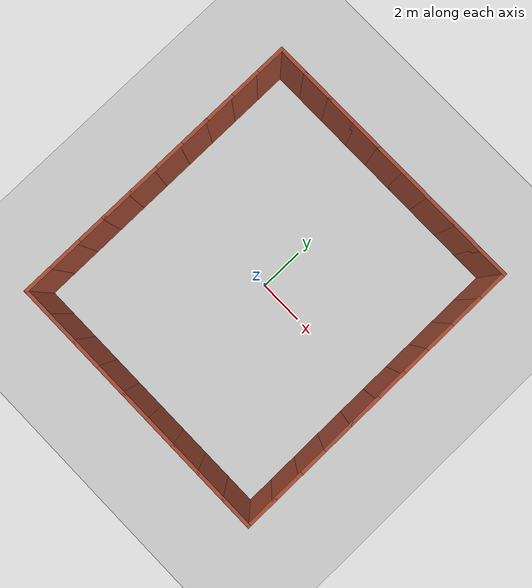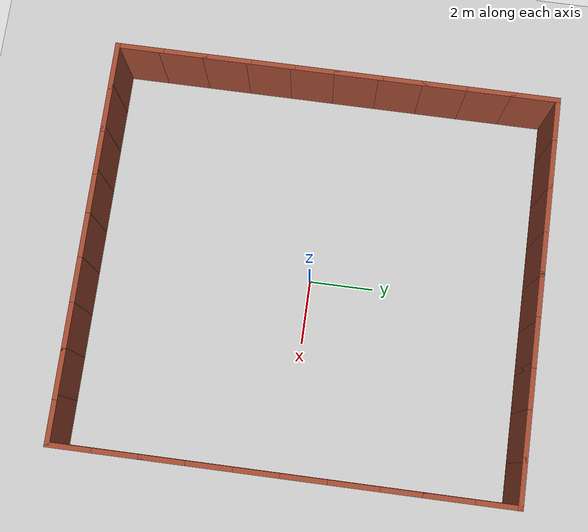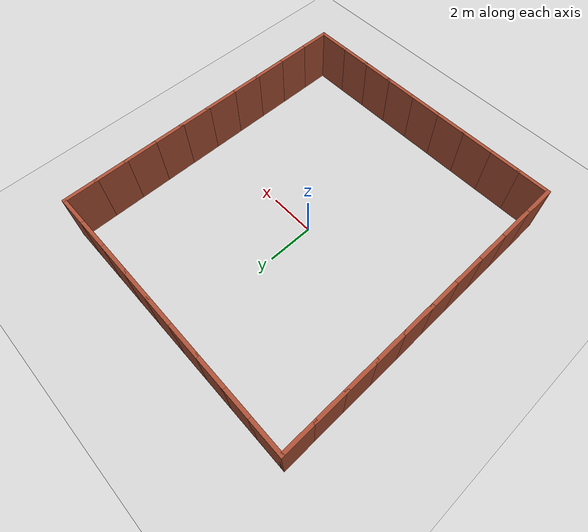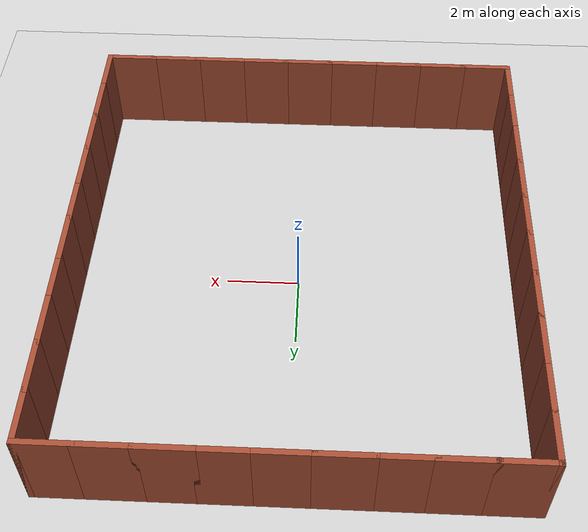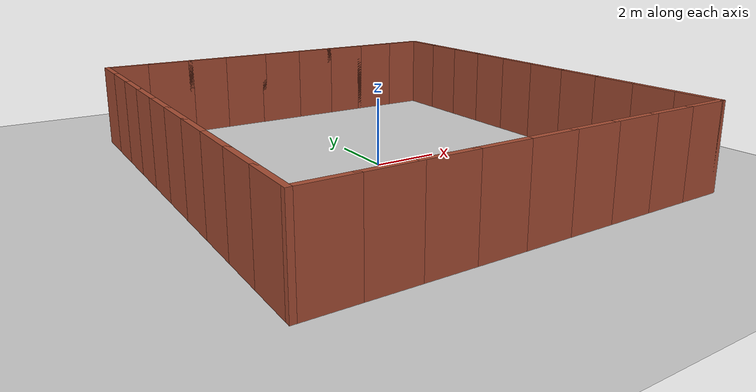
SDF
<sdf version="1.7">
 <world name="default">
  <light name="sun" type="directional">
   <pose>0 0 10 0 -0 0</pose>
   <diffuse>0.8 0.8 0.8 1</diffuse>
   <specular>0.2 0.2 0.2 1</specular>
   <attenuation>
    <range>1000</range>
    <constant>0.9</constant>
    <linear>0.01</linear>
    <quadratic>0.001</quadratic>
   </attenuation>
   <direction>-0.5 0.1 -0.9</direction>
   <spot><inner_angle>0</inner_angle><outer_angle>0</outer_angle><falloff>0</falloff></spot>
  </light>
  <model name="ground_plane">
   <static>1</static>
   <link name="link">
    <collision name="collision">
     <geometry><plane><normal>0 0 1</normal><size>100 100</size></plane></geometry>
     <surface>
      <contact><collide_bitmask>65535</collide_bitmask></contact>
      <friction><ode><mu>100</mu><mu2>50</mu2></ode></friction>
     </surface>
    </collision>
    <visual name="visual">
     <cast_shadows>0</cast_shadows>
     <geometry><plane><normal>0 0 1</normal><size>100 100</size></plane></geometry>
     <material>
      <script><uri>file://media/materials/scripts/gazebo.material</uri><name>Gazebo/Grey</name></script>
     </material>
    </visual>
   </link>
  </model>
  <gravity>0 0 -9.8</gravity>
  <magnetic_field>6e-06 2.3e-05 -4.2e-05</magnetic_field>
  <atmosphere type="adiabatic"/>
  <physics type="ode">
   <max_step_size>0.001</max_step_size>
   <real_time_factor>1</real_time_factor>
   <real_time_update_rate>1000</real_time_update_rate>
  </physics>
  <scene><ambient>0.4 0.4 0.4 1</ambient><background>0.7 0.7 0.7 1</background><shadows>1</shadows></scene>
  <audio><device>default</device></audio>
  <spherical_coordinates>
   <surface_model>EARTH_WGS84</surface_model>
   <latitude_deg>0</latitude_deg>
   <longitude_deg>0</longitude_deg>
   <elevation>0</elevation>
   <heading_deg>0</heading_deg>
  </spherical_coordinates>
  <model name="TestRoom">
   <pose>0.012629 0.027248 0 0 -0 0</pose>
   <link name="Wall_12">
    <collision name="Wall_12_Collision">
     <geometry><box><size>1.5 0.15 2.5</size></box></geometry>
     <pose>0 0 1.25 0 -0 0</pose>
    </collision>
    <visual name="Wall_12_Visual">
     <pose>0 0 1.25 0 -0 0</pose>
     <geometry><box><size>1.5 0.15 2.5</size></box></geometry>
     <material>
      <script><uri>file://media/materials/scripts/gazebo.material</uri><name>Gazebo/Bricks</name></script>
      <ambient>1 1 1 1</ambient>
     </material>
     <meta><layer>0</layer></meta>
    </visual>
    <pose>-4.05 6.75 0 0 -0 0</pose>
   </link>
   <link name="Wall_13">
    <collision name="Wall_13_Collision">
     <geometry><box><size>1.5 0.15 2.5</size></box></geometry>
     <pose>0 0 1.25 0 -0 0</pose>
    </collision>
    <visual name="Wall_13_Visual">
     <pose>0 0 1.25 0 -0 0</pose>
     <geometry><box><size>1.5 0.15 2.5</size></box></geometry>
     <material>
      <script><uri>file://media/materials/scripts/gazebo.material</uri><name>Gazebo/Bricks</name></script>
      <ambient>1 1 1 1</ambient>
     </material>
     <meta><layer>0</layer></meta>
    </visual>
    <pose>-2.7 6.75 0 0 -0 0</pose>
   </link>
   <link name="Wall_14">
    <collision name="Wall_14_Collision">
     <geometry><box><size>1.5 0.15 2.5</size></box></geometry>
     <pose>0 0 1.25 0 -0 0</pose>
    </collision>
    <visual name="Wall_14_Visual">
     <pose>0 0 1.25 0 -0 0</pose>
     <geometry><box><size>1.5 0.15 2.5</size></box></geometry>
     <material>
      <script><uri>file://media/materials/scripts/gazebo.material</uri><name>Gazebo/Bricks</name></script>
      <ambient>1 1 1 1</ambient>
     </material>
     <meta><layer>0</layer></meta>
    </visual>
    <pose>-1.35 6.75 0 0 -0 0</pose>
   </link>
   <link name="Wall_15">
    <collision name="Wall_15_Collision">
     <geometry><box><size>1.5 0.15 2.5</size></box></geometry>
     <pose>0 0 1.25 0 -0 0</pose>
    </collision>
    <visual name="Wall_15_Visual">
     <pose>0 0 1.25 0 -0 0</pose>
     <geometry><box><size>1.5 0.15 2.5</size></box></geometry>
     <material>
      <script><uri>file://media/materials/scripts/gazebo.material</uri><name>Gazebo/Bricks</name></script>
      <ambient>1 1 1 1</ambient>
     </material>
     <meta><layer>0</layer></meta>
    </visual>
    <pose>0 6.75 0 0 -0 0</pose>
   </link>
   <link name="Wall_16">
    <collision name="Wall_16_Collision">
     <geometry><box><size>1.5 0.15 2.5</size></box></geometry>
     <pose>0 0 1.25 0 -0 0</pose>
    </collision>
    <visual name="Wall_16_Visual">
     <pose>0 0 1.25 0 -0 0</pose>
     <geometry><box><size>1.5 0.15 2.5</size></box></geometry>
     <material>
      <script><uri>file://media/materials/scripts/gazebo.material</uri><name>Gazebo/Bricks</name></script>
      <ambient>1 1 1 1</ambient>
     </material>
     <meta><layer>0</layer></meta>
    </visual>
    <pose>1.35 6.75 0 0 -0 0</pose>
   </link>
   <link name="Wall_17">
    <collision name="Wall_17_Collision">
     <geometry><box><size>1.5 0.15 2.5</size></box></geometry>
     <pose>0 0 1.25 0 -0 0</pose>
    </collision>
    <visual name="Wall_17_Visual">
     <pose>0 0 1.25 0 -0 0</pose>
     <geometry><box><size>1.5 0.15 2.5</size></box></geometry>
     <material>
      <script><uri>file://media/materials/scripts/gazebo.material</uri><name>Gazebo/Bricks</name></script>
      <ambient>1 1 1 1</ambient>
     </material>
     <meta><layer>0</layer></meta>
    </visual>
    <pose>2.7 6.75 0 0 -0 0</pose>
   </link>
   <link name="Wall_19">
    <collision name="Wall_19_Collision">
     <geometry><box><size>1.5 0.15 2.5</size></box></geometry>
     <pose>0 0 1.25 0 -0 0</pose>
    </collision>
    <visual name="Wall_19_Visual">
     <pose>0 0 1.25 0 -0 0</pose>
     <geometry><box><size>1.5 0.15 2.5</size></box></geometry>
     <material>
      <script><uri>file://media/materials/scripts/gazebo.material</uri><name>Gazebo/Bricks</name></script>
      <ambient>1 1 1 1</ambient>
     </material>
     <meta><layer>0</layer></meta>
    </visual>
    <pose>4.05 6.75 0 0 -0 0</pose>
   </link>
   <link name="Wall_20">
    <collision name="Wall_20_Collision">
     <geometry><box><size>1.5 0.15 2.5</size></box></geometry>
     <pose>0 0 1.25 0 -0 0</pose>
    </collision>
    <visual name="Wall_20_Visual">
     <pose>0 0 1.25 0 -0 0</pose>
     <geometry><box><size>1.5 0.15 2.5</size></box></geometry>
     <material>
      <script><uri>file://media/materials/scripts/gazebo.material</uri><name>Gazebo/Bricks</name></script>
      <ambient>1 1 1 1</ambient>
     </material>
     <meta><layer>0</layer></meta>
    </visual>
    <pose>5.4 6.75 0 0 -0 0</pose>
   </link>
   <link name="Wall_21">
    <collision name="Wall_21_Collision">
     <geometry><box><size>1.5 0.15 2.5</size></box></geometry>
     <pose>0 0 1.25 0 -0 0</pose>
    </collision>
    <visual name="Wall_21_Visual">
     <pose>0 0 1.25 0 -0 0</pose>
     <geometry><box><size>1.5 0.15 2.5</size></box></geometry>
     <material>
      <script><uri>file://media/materials/scripts/gazebo.material</uri><name>Gazebo/Bricks</name></script>
      <ambient>1 1 1 1</ambient>
     </material>
     <meta><layer>0</layer></meta>
    </visual>
    <pose>6.075 6.075 0 0 -0 -1.5708</pose>
   </link>
   <link name="Wall_22">
    <collision name="Wall_22_Collision">
     <geometry><box><size>1.5 0.15 2.5</size></box></geometry>
     <pose>0 0 1.25 0 -0 0</pose>
    </collision>
    <visual name="Wall_22_Visual">
     <pose>0 0 1.25 0 -0 0</pose>
     <geometry><box><size>1.5 0.15 2.5</size></box></geometry>
     <material>
      <script><uri>file://media/materials/scripts/gazebo.material</uri><name>Gazebo/Bricks</name></script>
      <ambient>1 1 1 1</ambient>
     </material>
     <meta><layer>0</layer></meta>
    </visual>
    <pose>6.075 4.725 0 0 -0 -1.5708</pose>
   </link>
   <link name="Wall_23">
    <collision name="Wall_23_Collision">
     <geometry><box><size>1.5 0.15 2.5</size></box></geometry>
     <pose>0 0 1.25 0 -0 0</pose>
    </collision>
    <visual name="Wall_23_Visual">
     <pose>0 0 1.25 0 -0 0</pose>
     <geometry><box><size>1.5 0.15 2.5</size></box></geometry>
     <material>
      <script><uri>file://media/materials/scripts/gazebo.material</uri><name>Gazebo/Bricks</name></script>
      <ambient>1 1 1 1</ambient>
     </material>
     <meta><layer>0</layer></meta>
    </visual>
    <pose>6.075 3.375 0 0 -0 -1.5708</pose>
   </link>
   <link name="Wall_24">
    <collision name="Wall_24_Collision">
     <geometry><box><size>1.5 0.15 2.5</size></box></geometry>
     <pose>0 0 1.25 0 -0 0</pose>
    </collision>
    <visual name="Wall_24_Visual">
     <pose>0 0 1.25 0 -0 0</pose>
     <geometry><box><size>1.5 0.15 2.5</size></box></geometry>
     <material>
      <script><uri>file://media/materials/scripts/gazebo.material</uri><name>Gazebo/Bricks</name></script>
      <ambient>1 1 1 1</ambient>
     </material>
     <meta><layer>0</layer></meta>
    </visual>
    <pose>6.075 2.025 0 0 -0 -1.5708</pose>
   </link>
   <link name="Wall_26">
    <collision name="Wall_26_Collision">
     <geometry><box><size>1.5 0.15 2.5</size></box></geometry>
     <pose>0 0 1.25 0 -0 0</pose>
    </collision>
    <visual name="Wall_26_Visual">
     <pose>0 0 1.25 0 -0 0</pose>
     <geometry><box><size>1.5 0.15 2.5</size></box></geometry>
     <material>
      <script><uri>file://media/materials/scripts/gazebo.material</uri><name>Gazebo/Bricks</name></script>
      <ambient>1 1 1 1</ambient>
     </material>
     <meta><layer>0</layer></meta>
    </visual>
    <pose>6.075 0.675 0 0 -0 -1.5708</pose>
   </link>
   <link name="Wall_27">
    <collision name="Wall_27_Collision">
     <geometry><box><size>1.5 0.15 2.5</size></box></geometry>
     <pose>0 0 1.25 0 -0 0</pose>
    </collision>
    <visual name="Wall_27_Visual">
     <pose>0 0 1.25 0 -0 0</pose>
     <geometry><box><size>1.5 0.15 2.5</size></box></geometry>
     <material>
      <script><uri>file://media/materials/scripts/gazebo.material</uri><name>Gazebo/Bricks</name></script>
      <ambient>1 1 1 1</ambient>
     </material>
     <meta><layer>0</layer></meta>
    </visual>
    <pose>6.075 -0.675 0 0 -0 -1.5708</pose>
   </link>
   <link name="Wall_28">
    <collision name="Wall_28_Collision">
     <geometry><box><size>1.5 0.15 2.5</size></box></geometry>
     <pose>0 0 1.25 0 -0 0</pose>
    </collision>
    <visual name="Wall_28_Visual">
     <pose>0 0 1.25 0 -0 0</pose>
     <geometry><box><size>1.5 0.15 2.5</size></box></geometry>
     <material>
      <script><uri>file://media/materials/scripts/gazebo.material</uri><name>Gazebo/Bricks</name></script>
      <ambient>1 1 1 1</ambient>
     </material>
     <meta><layer>0</layer></meta>
    </visual>
    <pose>6.075 -2.025 0 0 -0 -1.5708</pose>
   </link>
   <link name="Wall_29">
    <collision name="Wall_29_Collision">
     <geometry><box><size>1.5 0.15 2.5</size></box></geometry>
     <pose>0 0 1.25 0 -0 0</pose>
    </collision>
    <visual name="Wall_29_Visual">
     <pose>0 0 1.25 0 -0 0</pose>
     <geometry><box><size>1.5 0.15 2.5</size></box></geometry>
     <material>
      <script><uri>file://media/materials/scripts/gazebo.material</uri><name>Gazebo/Bricks</name></script>
      <ambient>1 1 1 1</ambient>
     </material>
     <meta><layer>0</layer></meta>
    </visual>
    <pose>6.075 -3.375 0 0 -0 -1.5708</pose>
   </link>
   <link name="Wall_3">
    <collision name="Wall_3_Collision">
     <geometry><box><size>1.5 0.15 2.5</size></box></geometry>
     <pose>0 0 1.25 0 -0 0</pose>
    </collision>
    <visual name="Wall_3_Visual">
     <pose>0 0 1.25 0 -0 0</pose>
     <geometry><box><size>1.5 0.15 2.5</size></box></geometry>
     <material>
      <script><uri>file://media/materials/scripts/gazebo.material</uri><name>Gazebo/Bricks</name></script>
      <ambient>1 1 1 1</ambient>
     </material>
     <meta><layer>0</layer></meta>
    </visual>
    <pose>-5.4 6.75 0 0 -0 0</pose>
   </link>
   <link name="Wall_31">
    <collision name="Wall_31_Collision">
     <geometry><box><size>1.5 0.15 2.5</size></box></geometry>
     <pose>0 0 1.25 0 -0 0</pose>
    </collision>
    <visual name="Wall_31_Visual">
     <pose>0 0 1.25 0 -0 0</pose>
     <geometry><box><size>1.5 0.15 2.5</size></box></geometry>
     <material>
      <script><uri>file://media/materials/scripts/gazebo.material</uri><name>Gazebo/Bricks</name></script>
      <ambient>1 1 1 1</ambient>
     </material>
     <meta><layer>0</layer></meta>
    </visual>
    <pose>6.075 -4.725 0 0 -0 -1.5708</pose>
   </link>
   <link name="Wall_32">
    <collision name="Wall_32_Collision">
     <geometry><box><size>1.5 0.15 2.5</size></box></geometry>
     <pose>0 0 1.25 0 -0 0</pose>
    </collision>
    <visual name="Wall_32_Visual">
     <pose>0 0 1.25 0 -0 0</pose>
     <geometry><box><size>1.5 0.15 2.5</size></box></geometry>
     <material>
      <script><uri>file://media/materials/scripts/gazebo.material</uri><name>Gazebo/Bricks</name></script>
      <ambient>1 1 1 1</ambient>
     </material>
     <meta><layer>0</layer></meta>
    </visual>
    <pose>6.075 -6.075 0 0 -0 -1.5708</pose>
   </link>
   <link name="Wall_33">
    <collision name="Wall_33_Collision">
     <geometry><box><size>1.5 0.15 2.5</size></box></geometry>
     <pose>0 0 1.25 0 -0 0</pose>
    </collision>
    <visual name="Wall_33_Visual">
     <pose>0 0 1.25 0 -0 0</pose>
     <geometry><box><size>1.5 0.15 2.5</size></box></geometry>
     <material>
      <script><uri>file://media/materials/scripts/gazebo.material</uri><name>Gazebo/Bricks</name></script>
      <ambient>1 1 1 1</ambient>
     </material>
     <meta><layer>0</layer></meta>
    </visual>
    <pose>5.4 -6.75 0 0 -0 3.14159</pose>
   </link>
   <link name="Wall_34">
    <collision name="Wall_34_Collision">
     <geometry><box><size>1.5 0.15 2.5</size></box></geometry>
     <pose>0 0 1.25 0 -0 0</pose>
    </collision>
    <visual name="Wall_34_Visual">
     <pose>0 0 1.25 0 -0 0</pose>
     <geometry><box><size>1.5 0.15 2.5</size></box></geometry>
     <material>
      <script><uri>file://media/materials/scripts/gazebo.material</uri><name>Gazebo/Bricks</name></script>
      <ambient>1 1 1 1</ambient>
     </material>
     <meta><layer>0</layer></meta>
    </visual>
    <pose>4.05 -6.75 0 0 -0 3.14159</pose>
   </link>
   <link name="Wall_35">
    <collision name="Wall_35_Collision">
     <geometry><box><size>1.5 0.15 2.5</size></box></geometry>
     <pose>0 0 1.25 0 -0 0</pose>
    </collision>
    <visual name="Wall_35_Visual">
     <pose>0 0 1.25 0 -0 0</pose>
     <geometry><box><size>1.5 0.15 2.5</size></box></geometry>
     <material>
      <script><uri>file://media/materials/scripts/gazebo.material</uri><name>Gazebo/Bricks</name></script>
      <ambient>1 1 1 1</ambient>
     </material>
     <meta><layer>0</layer></meta>
    </visual>
    <pose>2.7 -6.75 0 0 -0 3.14159</pose>
   </link>
   <link name="Wall_36">
    <collision name="Wall_36_Collision">
     <geometry><box><size>1.5 0.15 2.5</size></box></geometry>
     <pose>0 0 1.25 0 -0 0</pose>
    </collision>
    <visual name="Wall_36_Visual">
     <pose>0 0 1.25 0 -0 0</pose>
     <geometry><box><size>1.5 0.15 2.5</size></box></geometry>
     <material>
      <script><uri>file://media/materials/scripts/gazebo.material</uri><name>Gazebo/Bricks</name></script>
      <ambient>1 1 1 1</ambient>
     </material>
     <meta><layer>0</layer></meta>
    </visual>
    <pose>1.35 -6.75 0 0 -0 3.14159</pose>
   </link>
   <link name="Wall_37">
    <collision name="Wall_37_Collision">
     <geometry><box><size>1.5 0.15 2.5</size></box></geometry>
     <pose>0 0 1.25 0 -0 0</pose>
    </collision>
    <visual name="Wall_37_Visual">
     <pose>0 0 1.25 0 -0 0</pose>
     <geometry><box><size>1.5 0.15 2.5</size></box></geometry>
     <material>
      <script><uri>file://media/materials/scripts/gazebo.material</uri><name>Gazebo/Bricks</name></script>
      <ambient>1 1 1 1</ambient>
     </material>
     <meta><layer>0</layer></meta>
    </visual>
    <pose>0 -6.75 0 0 -0 3.14159</pose>
   </link>
   <link name="Wall_38">
    <collision name="Wall_38_Collision">
     <geometry><box><size>1.5 0.15 2.5</size></box></geometry>
     <pose>0 0 1.25 0 -0 0</pose>
    </collision>
    <visual name="Wall_38_Visual">
     <pose>0 0 1.25 0 -0 0</pose>
     <geometry><box><size>1.5 0.15 2.5</size></box></geometry>
     <material>
      <script><uri>file://media/materials/scripts/gazebo.material</uri><name>Gazebo/Bricks</name></script>
      <ambient>1 1 1 1</ambient>
     </material>
     <meta><layer>0</layer></meta>
    </visual>
    <pose>-1.35 -6.75 0 0 -0 3.14159</pose>
   </link>
   <link name="Wall_39">
    <collision name="Wall_39_Collision">
     <geometry><box><size>1.5 0.15 2.5</size></box></geometry>
     <pose>0 0 1.25 0 -0 0</pose>
    </collision>
    <visual name="Wall_39_Visual">
     <pose>0 0 1.25 0 -0 0</pose>
     <geometry><box><size>1.5 0.15 2.5</size></box></geometry>
     <material>
      <script><uri>file://media/materials/scripts/gazebo.material</uri><name>Gazebo/Bricks</name></script>
      <ambient>1 1 1 1</ambient>
     </material>
     <meta><layer>0</layer></meta>
    </visual>
    <pose>-2.7 -6.75 0 0 -0 3.14159</pose>
   </link>
   <link name="Wall_40">
    <collision name="Wall_40_Collision">
     <geometry><box><size>1.5 0.15 2.5</size></box></geometry>
     <pose>0 0 1.25 0 -0 0</pose>
    </collision>
    <visual name="Wall_40_Visual">
     <pose>0 0 1.25 0 -0 0</pose>
     <geometry><box><size>1.5 0.15 2.5</size></box></geometry>
     <material>
      <script><uri>file://media/materials/scripts/gazebo.material</uri><name>Gazebo/Bricks</name></script>
      <ambient>1 1 1 1</ambient>
     </material>
     <meta><layer>0</layer></meta>
    </visual>
    <pose>-4.05 -6.75 0 0 -0 3.14159</pose>
   </link>
   <link name="Wall_42">
    <collision name="Wall_42_Collision">
     <geometry><box><size>1.5 0.15 2.5</size></box></geometry>
     <pose>0 0 1.25 0 -0 0</pose>
    </collision>
    <visual name="Wall_42_Visual">
     <pose>0 0 1.25 0 -0 0</pose>
     <geometry><box><size>1.5 0.15 2.5</size></box></geometry>
     <material>
      <script><uri>file://media/materials/scripts/gazebo.material</uri><name>Gazebo/Bricks</name></script>
      <ambient>1 1 1 1</ambient>
     </material>
     <meta><layer>0</layer></meta>
    </visual>
    <pose>-5.4 -6.75 0 0 -0 3.14159</pose>
   </link>
   <link name="Wall_43">
    <collision name="Wall_43_Collision">
     <geometry><box><size>1.5 0.15 2.5</size></box></geometry>
     <pose>0 0 1.25 0 -0 0</pose>
    </collision>
    <visual name="Wall_43_Visual">
     <pose>0 0 1.25 0 -0 0</pose>
     <geometry><box><size>1.5 0.15 2.5</size></box></geometry>
     <material>
      <script><uri>file://media/materials/scripts/gazebo.material</uri><name>Gazebo/Bricks</name></script>
      <ambient>1 1 1 1</ambient>
     </material>
     <meta><layer>0</layer></meta>
    </visual>
    <pose>-6.075 -6.075 0 0 -0 1.5708</pose>
   </link>
   <link name="Wall_44">
    <collision name="Wall_44_Collision">
     <geometry><box><size>1.5 0.15 2.5</size></box></geometry>
     <pose>0 0 1.25 0 -0 0</pose>
    </collision>
    <visual name="Wall_44_Visual">
     <pose>0 0 1.25 0 -0 0</pose>
     <geometry><box><size>1.5 0.15 2.5</size></box></geometry>
     <material>
      <script><uri>file://media/materials/scripts/gazebo.material</uri><name>Gazebo/Bricks</name></script>
      <ambient>1 1 1 1</ambient>
     </material>
     <meta><layer>0</layer></meta>
    </visual>
    <pose>-6.075 -4.725 0 0 -0 1.5708</pose>
   </link>
   <link name="Wall_45">
    <collision name="Wall_45_Collision">
     <geometry><box><size>1.5 0.15 2.5</size></box></geometry>
     <pose>0 0 1.25 0 -0 0</pose>
    </collision>
    <visual name="Wall_45_Visual">
     <pose>0 0 1.25 0 -0 0</pose>
     <geometry><box><size>1.5 0.15 2.5</size></box></geometry>
     <material>
      <script><uri>file://media/materials/scripts/gazebo.material</uri><name>Gazebo/Bricks</name></script>
      <ambient>1 1 1 1</ambient>
     </material>
     <meta><layer>0</layer></meta>
    </visual>
    <pose>-6.075 -3.375 0 0 -0 1.5708</pose>
   </link>
   <link name="Wall_47">
    <collision name="Wall_47_Collision">
     <geometry><box><size>1.5 0.15 2.5</size></box></geometry>
     <pose>0 0 1.25 0 -0 0</pose>
    </collision>
    <visual name="Wall_47_Visual">
     <pose>0 0 1.25 0 -0 0</pose>
     <geometry><box><size>1.5 0.15 2.5</size></box></geometry>
     <material>
      <script><uri>file://media/materials/scripts/gazebo.material</uri><name>Gazebo/Bricks</name></script>
      <ambient>1 1 1 1</ambient>
     </material>
     <meta><layer>0</layer></meta>
    </visual>
    <pose>-6.075 -2.025 0 0 -0 1.5708</pose>
   </link>
   <link name="Wall_48">
    <collision name="Wall_48_Collision">
     <geometry><box><size>1.5 0.15 2.5</size></box></geometry>
     <pose>0 0 1.25 0 -0 0</pose>
    </collision>
    <visual name="Wall_48_Visual">
     <pose>0 0 1.25 0 -0 0</pose>
     <geometry><box><size>1.5 0.15 2.5</size></box></geometry>
     <material>
      <script><uri>file://media/materials/scripts/gazebo.material</uri><name>Gazebo/Bricks</name></script>
      <ambient>1 1 1 1</ambient>
     </material>
     <meta><layer>0</layer></meta>
    </visual>
    <pose>-6.075 -0.675 0 0 -0 1.5708</pose>
   </link>
   <link name="Wall_49">
    <collision name="Wall_49_Collision">
     <geometry><box><size>1.5 0.15 2.5</size></box></geometry>
     <pose>0 0 1.25 0 -0 0</pose>
    </collision>
    <visual name="Wall_49_Visual">
     <pose>0 0 1.25 0 -0 0</pose>
     <geometry><box><size>1.5 0.15 2.5</size></box></geometry>
     <material>
      <script><uri>file://media/materials/scripts/gazebo.material</uri><name>Gazebo/Bricks</name></script>
      <ambient>1 1 1 1</ambient>
     </material>
     <meta><layer>0</layer></meta>
    </visual>
    <pose>-6.075 0.675 0 0 -0 1.5708</pose>
   </link>
   <link name="Wall_50">
    <collision name="Wall_50_Collision">
     <geometry><box><size>1.5 0.15 2.5</size></box></geometry>
     <pose>0 0 1.25 0 -0 0</pose>
    </collision>
    <visual name="Wall_50_Visual">
     <pose>0 0 1.25 0 -0 0</pose>
     <geometry><box><size>1.5 0.15 2.5</size></box></geometry>
     <material>
      <script><uri>file://media/materials/scripts/gazebo.material</uri><name>Gazebo/Bricks</name></script>
      <ambient>1 1 1 1</ambient>
     </material>
     <meta><layer>0</layer></meta>
    </visual>
    <pose>-6.075 2.025 0 0 -0 1.5708</pose>
   </link>
   <link name="Wall_52">
    <collision name="Wall_52_Collision">
     <geometry><box><size>1.5 0.15 2.5</size></box></geometry>
     <pose>0 0 1.25 0 -0 0</pose>
    </collision>
    <visual name="Wall_52_Visual">
     <pose>0 0 1.25 0 -0 0</pose>
     <geometry><box><size>1.5 0.15 2.5</size></box></geometry>
     <material>
      <script><uri>file://media/materials/scripts/gazebo.material</uri><name>Gazebo/Bricks</name></script>
      <ambient>1 1 1 1</ambient>
     </material>
     <meta><layer>0</layer></meta>
    </visual>
    <pose>-6.075 3.375 0 0 -0 1.5708</pose>
   </link>
   <link name="Wall_53">
    <collision name="Wall_53_Collision">
     <geometry><box><size>1.5 0.15 2.5</size></box></geometry>
     <pose>0 0 1.25 0 -0 0</pose>
    </collision>
    <visual name="Wall_53_Visual">
     <pose>0 0 1.25 0 -0 0</pose>
     <geometry><box><size>1.5 0.15 2.5</size></box></geometry>
     <material>
      <script><uri>file://media/materials/scripts/gazebo.material</uri><name>Gazebo/Bricks</name></script>
      <ambient>1 1 1 1</ambient>
     </material>
     <meta><layer>0</layer></meta>
    </visual>
    <pose>-6.075 4.725 0 0 -0 1.5708</pose>
   </link>
   <link name="Wall_54">
    <collision name="Wall_54_Collision">
     <geometry><box><size>1.5 0.15 2.5</size></box></geometry>
     <pose>0 0 1.25 0 -0 0</pose>
    </collision>
    <visual name="Wall_54_Visual">
     <pose>0 0 1.25 0 -0 0</pose>
     <geometry><box><size>1.5 0.15 2.5</size></box></geometry>
     <material>
      <script><uri>file://media/materials/scripts/gazebo.material</uri><name>Gazebo/Bricks</name></script>
      <ambient>1 1 1 1</ambient>
     </material>
     <meta><layer>0</layer></meta>
    </visual>
    <pose>-6.075 6.075 0 0 -0 1.5708</pose>
   </link>
   <static>1</static>
  </model>
 </world>
</sdf>
